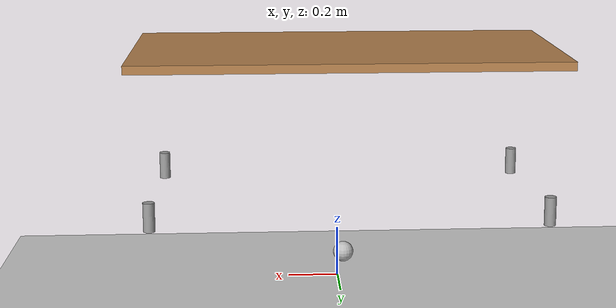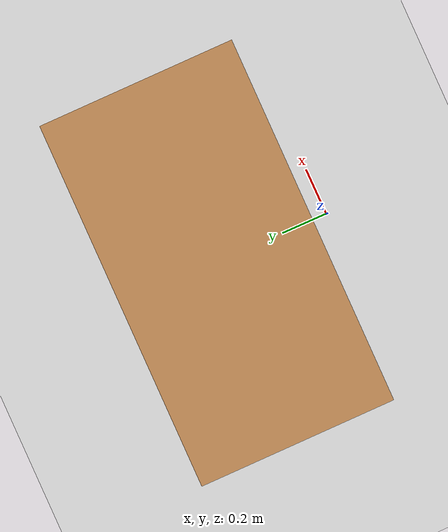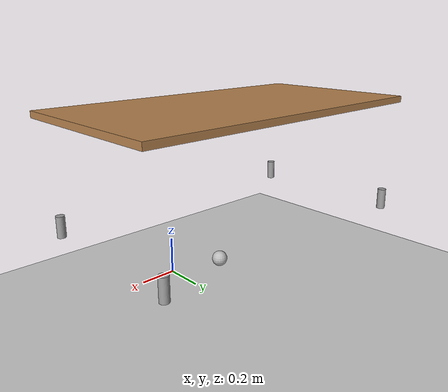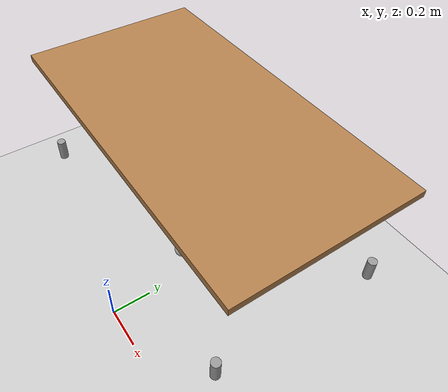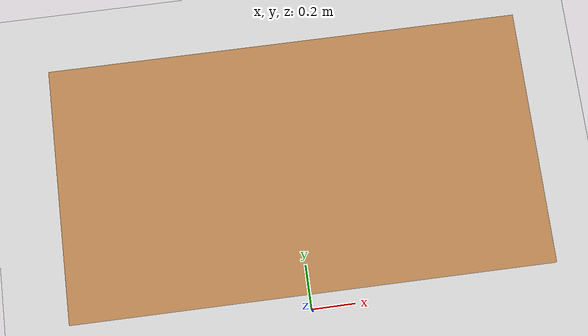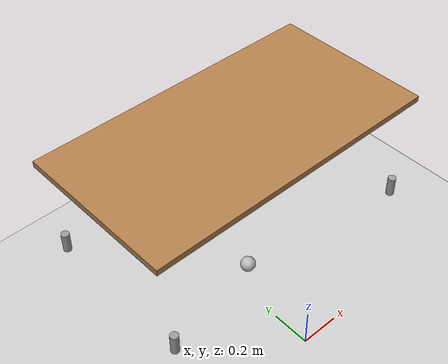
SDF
<sdf version="1.4">
 <world name="default">
  <include><uri>model://ground_plane</uri></include>
  <include><uri>model://sun</uri></include>
  <include>
   <uri>model://table_short</uri>
   <name>table</name>
   <pose>0 0.5 0 0 0 0</pose>
   <static>1</static>
  </include>
  <include><uri>model://tomato</uri><pose>0 0.4 0.26 0 0 0.3</pose></include>
  <physics name="default_physics" default="0" type="ode">
   <max_step_size>0.01</max_step_size>
   <real_time_factor>1</real_time_factor>
   <real_time_update_rate>100</real_time_update_rate>
   <ode>
    <solver>
     <type>quick</type>
     <iters>50</iters>
     <sor>1.0</sor>
     <use_dynamic_moi_rescaling>false</use_dynamic_moi_rescaling>
    </solver>
   </ode>
  </physics>
 </world>
</sdf>

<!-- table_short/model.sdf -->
<sdf version="1.5">
  <model name="table">
    <static>true</static>
    <link name="link">
      <collision name="surface">
        <pose>0 0 1.0 0 0 0</pose>
        <geometry>
          <box>
            <size>1.5 0.8 0.03</size>
          </box>
        </geometry>
        <surface>
          <friction>
            <ode>
              <mu>0.6</mu>
              <mu2>0.6</mu2>
            </ode>
          </friction>
        </surface>
      </collision>
      <visual name="visual1">
        <pose>0 0 1.0 0 0 0</pose>
        <geometry>
          <box>
            <size>1.5 0.8 0.03</size>
          </box>
        </geometry>
        <material>
          <script>
            <uri>file://media/materials/scripts/gazebo.material</uri>
            <name>Gazebo/Wood</name>
          </script>
        </material>
      </visual>
      <collision name="front_left_leg">
        <pose>0.68 0.38 0.5 0 0 0</pose>
        <geometry>
          <cylinder>
            <radius>0.02</radius>
            <length>0.10</length>
          </cylinder>
        </geometry>
      </collision>
      <visual name="front_left_leg">
        <pose>0.68 0.38 0.5 0 0 0</pose>
        <geometry>
          <cylinder>
            <radius>0.02</radius>
            <length>0.10</length>
          </cylinder>
        </geometry>
        <material>
          <script>
            <uri>file://media/materials/scripts/gazebo.material</uri>
            <name>Gazebo/Grey</name>
          </script>
        </material>
      </visual>
      <collision name="front_right_leg">
        <pose>0.68 -0.38 0.5 0 0 0</pose>
        <geometry>
          <cylinder>
            <radius>0.02</radius>
            <length>0.10</length>
          </cylinder>
        </geometry>
      </collision>
      <visual name="front_right_leg">
        <pose>0.68 -0.38 0.5 0 0 0</pose>
        <geometry>
          <cylinder>
            <radius>0.02</radius>
            <length>0.10</length>
          </cylinder>
        </geometry>
        <material>
          <script>
            <uri>file://media/materials/scripts/gazebo.material</uri>
            <name>Gazebo/Grey</name>
          </script>
        </material>
      </visual>
      <collision name="back_right_leg">
        <pose>-0.68 -0.38 0.5 0 0 0</pose>
        <geometry>
          <cylinder>
            <radius>0.02</radius>
            <length>0.10</length>
          </cylinder>
        </geometry>
      </collision>
      <visual name="back_right_leg">
        <pose>-0.68 -0.38 0.5 0 0 0</pose>
        <geometry>
          <cylinder>
            <radius>0.02</radius>
            <length>0.10</length>
          </cylinder>
        </geometry>
        <material>
          <script>
            <uri>file://media/materials/scripts/gazebo.material</uri>
            <name>Gazebo/Grey</name>
          </script>
        </material>
      </visual>
      <collision name="back_left_leg">
        <pose>-0.68 0.38 0.5 0 0 0</pose>
        <geometry>
          <cylinder>
            <radius>0.02</radius>
            <length>0.10</length>
          </cylinder>
        </geometry>
      </collision>
      <visual name="back_left_leg">
        <pose>-0.68 0.38 0.5 0 0 0</pose>
        <geometry>
          <cylinder>
            <radius>0.02</radius>
            <length>0.10</length>
          </cylinder>
        </geometry>
        <material>
          <script>
            <uri>file://media/materials/scripts/gazebo.material</uri>
            <name>Gazebo/Grey</name>
          </script>
        </material>
      </visual>
    </link>
  </model>
</sdf>

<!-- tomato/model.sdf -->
<sdf version="1.4">
  <model name="tomato">
    <static>false</static>
    <link name="link">
      <inertial>
        <mass>0.01</mass>
        <inertia>
          <ixx>0.0001</ixx>
          <ixy>0.0</ixy>
          <ixz>0.0</ixz>
          <iyy>0.0001</iyy>
          <iyz>0.0</iyz>
          <izz>0.0001</izz>
        </inertia>
      </inertial>
      <pose>0 0 -0.038 0 0 0</pose>
      <collision name="collision">
        <geometry>
          <!-- We use a cylinder to stop it from rolling -->
          <cylinder>
            <length>0.076</length> <!-- 2*radius of sphere-->
            <radius>0.01</radius>
          </cylinder>
        </geometry>
      </collision>
      <visual name="visual">
        <geometry>
          <sphere>
            <radius>0.038</radius>
          </sphere>
        </geometry>
        <material>
          <script>
            <uri>file://media/materials/scripts/custom.material</uri>
            <name>Custom/Tomato</name>
          </script>
        </material>
      </visual>
    </link>
  </model>
</sdf>
